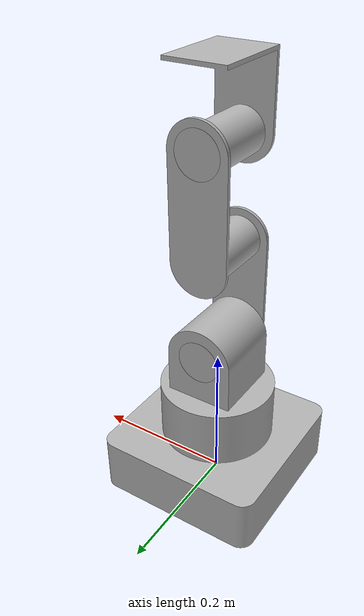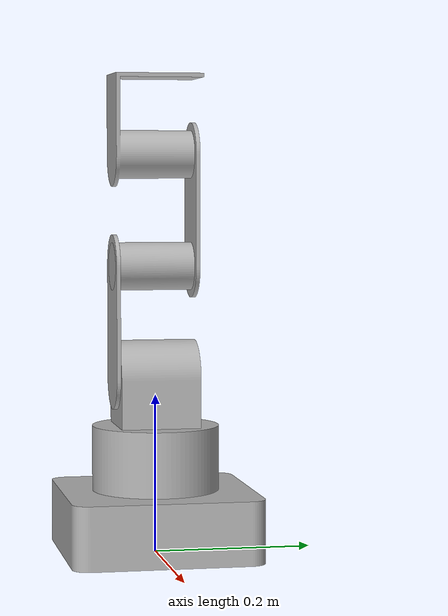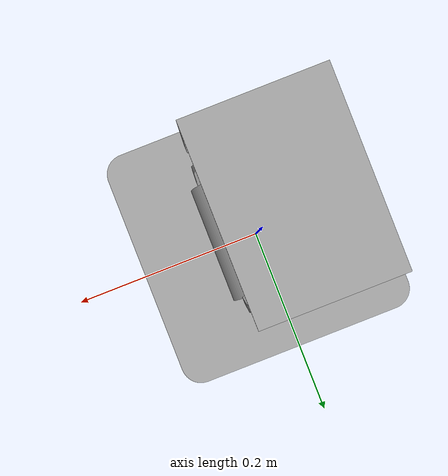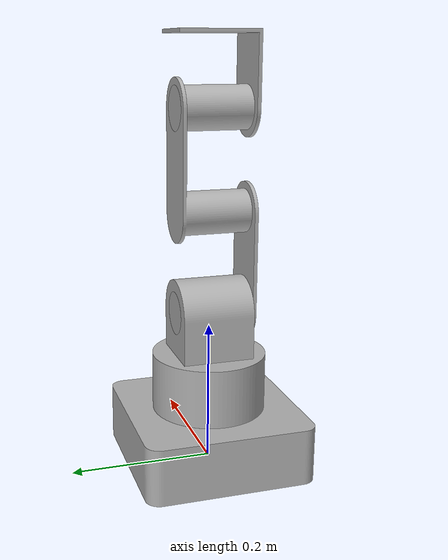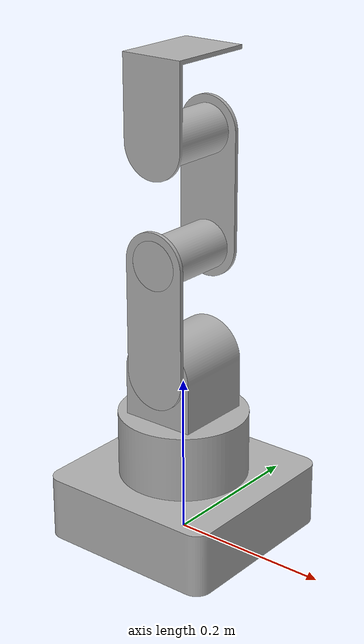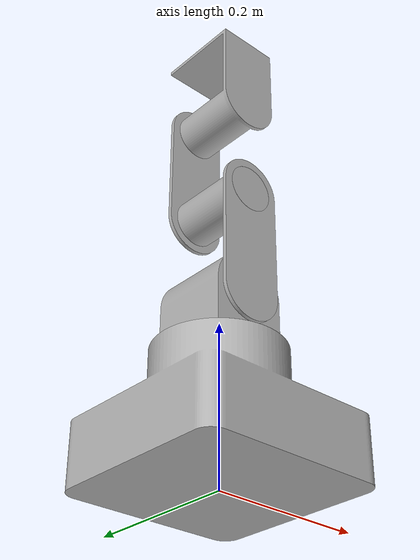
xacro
<?xml version="1.0" ?>
<robot name="ASSY" xmlns:xacro="http://www.ros.org/wiki/xacro">

<xacro:include filename="$(find ASSY_description)/urdf/materials.xacro" />
<xacro:include filename="$(find ASSY_description)/urdf/ASSY.trans" />
<xacro:include filename="$(find ASSY_description)/urdf/ASSY.gazebo" />
<link name="base_link">
  <inertial>
    <origin xyz="0.0 2.3389564020396408e-17 0.06131529627998313" rpy="0 0 0"/>
    <mass value="6.221541887517502"/>
    <inertia ixx="0.035631" iyy="0.035631" izz="0.048774" ixy="-0.0" iyz="0.0" ixz="0.0"/>
  </inertial>
  <visual>
    <origin xyz="0 0 0" rpy="0 0 0"/>
    <geometry>
      <mesh filename="package://ASSY_description/meshes/base_link.stl" scale="0.001 0.001 0.001"/>
    </geometry>
    <material name="silver"/>
  </visual>
  <collision>
    <origin xyz="0 0 0" rpy="0 0 0"/>
    <geometry>
      <mesh filename="package://ASSY_description/meshes/base_link.stl" scale="0.001 0.001 0.001"/>
    </geometry>
  </collision>
</link>

<link name="2nd_link_1">
  <inertial>
    <origin xyz="9.783844711946835e-18 1.0078181669594599e-18 0.04588602552300172" rpy="0 0 0"/>
    <mass value="0.6453424717672056"/>
    <inertia ixx="0.001214" iyy="0.001232" izz="0.001086" ixy="-3e-06" iyz="-0.0" ixz="-0.0"/>
  </inertial>
  <visual>
    <origin xyz="-0.0 -0.0 -0.16" rpy="0 0 0"/>
    <geometry>
      <mesh filename="package://ASSY_description/meshes/2nd_link_1.stl" scale="0.001 0.001 0.001"/>
    </geometry>
    <material name="silver"/>
  </visual>
  <collision>
    <origin xyz="-0.0 -0.0 -0.16" rpy="0 0 0"/>
    <geometry>
      <mesh filename="package://ASSY_description/meshes/2nd_link_1.stl" scale="0.001 0.001 0.001"/>
    </geometry>
  </collision>
</link>

<link name="3rd_link_1">
  <inertial>
    <origin xyz="0.009015719595180995 -0.0593778352449694 0.010570798660008512" rpy="0 0 0"/>
    <mass value="0.34973891311064575"/>
    <inertia ixx="0.000803" iyy="0.000534" izz="0.000486" ixy="4.6e-05" iyz="0.000153" ixz="-3.6e-05"/>
  </inertial>
  <visual>
    <origin xyz="0.007151 -0.049486 -0.223" rpy="0 0 0"/>
    <geometry>
      <mesh filename="package://ASSY_description/meshes/3rd_link_1.stl" scale="0.001 0.001 0.001"/>
    </geometry>
    <material name="silver"/>
  </visual>
  <collision>
    <origin xyz="0.007151 -0.049486 -0.223" rpy="0 0 0"/>
    <geometry>
      <mesh filename="package://ASSY_description/meshes/3rd_link_1.stl" scale="0.001 0.001 0.001"/>
    </geometry>
  </collision>
</link>

<link name="4th_link_1">
  <inertial>
    <origin xyz="-0.008195842234604123 0.0594960109393662 0.010571994781106875" rpy="0 0 0"/>
    <mass value="0.34973891311064575"/>
    <inertia ixx="0.000807" iyy="0.000531" izz="0.000486" ixy="3.5e-05" iyz="-0.000157" ixz="1e-05"/>
  </inertial>
  <visual>
    <origin xyz="-0.013508 0.053619 -0.362884" rpy="0 0 0"/>
    <geometry>
      <mesh filename="package://ASSY_description/meshes/4th_link_1.stl" scale="0.001 0.001 0.001"/>
    </geometry>
    <material name="silver"/>
  </visual>
  <collision>
    <origin xyz="-0.013508 0.053619 -0.362884" rpy="0 0 0"/>
    <geometry>
      <mesh filename="package://ASSY_description/meshes/4th_link_1.stl" scale="0.001 0.001 0.001"/>
    </geometry>
  </collision>
</link>

<link name="5th_link_1">
  <inertial>
    <origin xyz="0.008703108456258516 -0.056370566070146066 0.015578827132052386" rpy="0 0 0"/>
    <mass value="0.37730970943744063"/>
    <inertia ixx="0.000904" iyy="0.000628" izz="0.000514" ixy="4.2e-05" iyz="4e-05" ixz="-2e-05"/>
  </inertial>
  <visual>
    <origin xyz="-0.003694 -0.051053 -0.502785" rpy="0 0 0"/>
    <geometry>
      <mesh filename="package://ASSY_description/meshes/5th_link_1.stl" scale="0.001 0.001 0.001"/>
    </geometry>
    <material name="silver"/>
  </visual>
  <collision>
    <origin xyz="-0.003694 -0.051053 -0.502785" rpy="0 0 0"/>
    <geometry>
      <mesh filename="package://ASSY_description/meshes/5th_link_1.stl" scale="0.001 0.001 0.001"/>
    </geometry>
  </collision>
</link>

<joint name="Revolute 1" type="continuous">
  <origin xyz="0.0 0.0 0.16" rpy="0 0 0"/>
  <parent link="base_link"/>
  <child link="2nd_link_1"/>
  <axis xyz="0.0 0.0 -1.0"/>
</joint>

<joint name="Revolute 2" type="continuous">
  <origin xyz="-0.007151 0.049486 0.063" rpy="0 0 0"/>
  <parent link="2nd_link_1"/>
  <child link="3rd_link_1"/>
  <axis xyz="0.143022 -0.98972 -0.0"/>
</joint>

<joint name="Revolute 3" type="continuous">
  <origin xyz="0.020659 -0.103105 0.139884" rpy="0 0 0"/>
  <parent link="3rd_link_1"/>
  <child link="4th_link_1"/>
  <axis xyz="0.143022 -0.98972 -0.0"/>
</joint>

<joint name="Revolute 4" type="continuous">
  <origin xyz="-0.009814 0.104672 0.139901" rpy="0 0 0"/>
  <parent link="4th_link_1"/>
  <child link="5th_link_1"/>
  <axis xyz="-0.143022 0.98972 -0.0"/>
</joint>

</robot>

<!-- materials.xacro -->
<robot name="ASSY" xmlns:xacro="http://www.ros.org/wiki/xacro" >

<material name="silver">
  <color rgba="0.700 0.700 0.700 1.000"/>
</material>

</robot>

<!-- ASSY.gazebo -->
<robot name="ASSY" xmlns:xacro="http://www.ros.org/wiki/xacro" >

<xacro:property name="body_color" value="Gazebo/Silver" />

<gazebo>
  <plugin name="control" filename="libgazebo_ros_control.so"/>
</gazebo>
<gazebo reference="base_link">
  <material>${body_color}</material>
  <mu1>0.2</mu1>
  <mu2>0.2</mu2>
  <selfCollide>true</selfCollide>
  <gravity>true</gravity>
</gazebo>

<gazebo reference="2nd_link_1">
  <material>${body_color}</material>
  <mu1>0.2</mu1>
  <mu2>0.2</mu2>
  <selfCollide>true</selfCollide>
</gazebo>

<gazebo reference="3rd_link_1">
  <material>${body_color}</material>
  <mu1>0.2</mu1>
  <mu2>0.2</mu2>
  <selfCollide>true</selfCollide>
</gazebo>

<gazebo reference="4th_link_1">
  <material>${body_color}</material>
  <mu1>0.2</mu1>
  <mu2>0.2</mu2>
  <selfCollide>true</selfCollide>
</gazebo>

<gazebo reference="5th_link_1">
  <material>${body_color}</material>
  <mu1>0.2</mu1>
  <mu2>0.2</mu2>
  <selfCollide>true</selfCollide>
</gazebo>

</robot>
